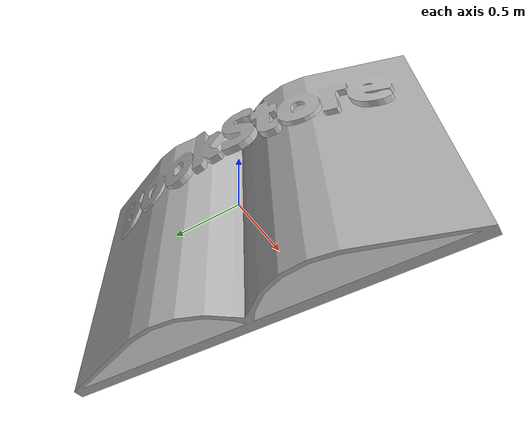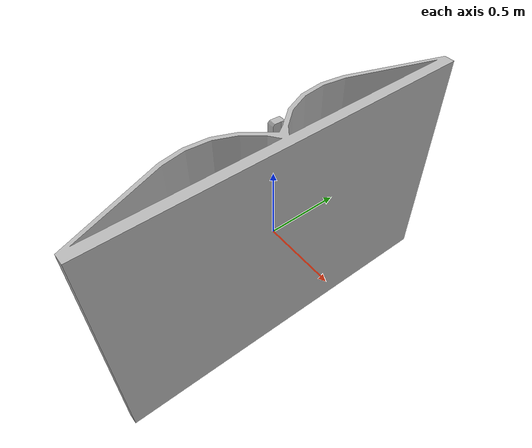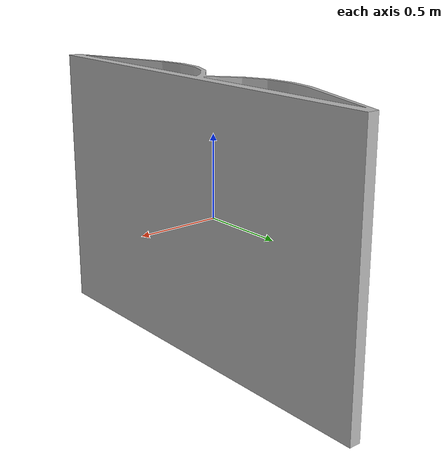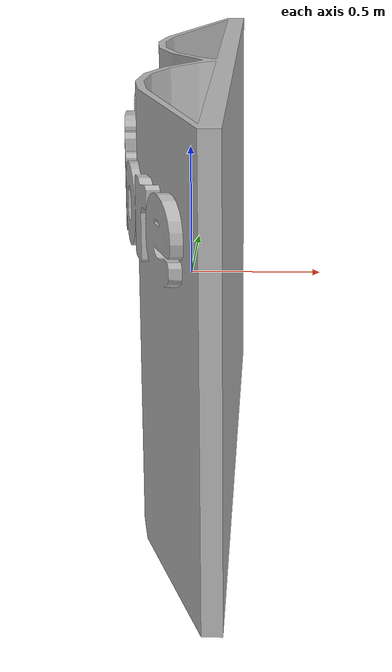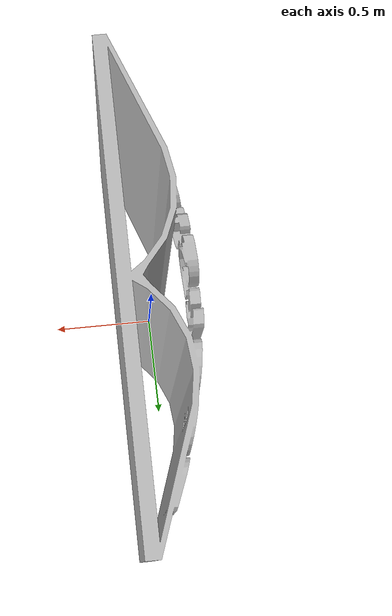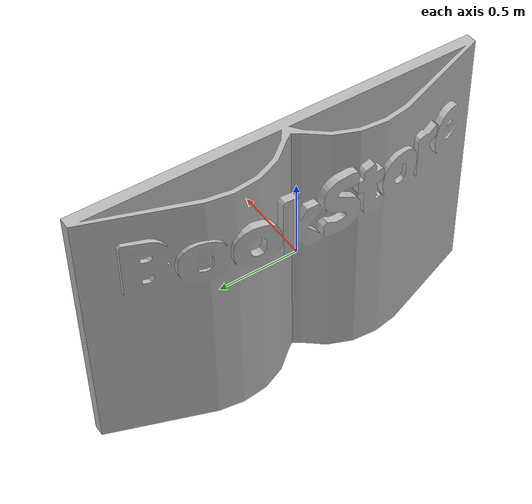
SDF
<?xml version="1.0" ?>
<sdf version="1.6">
  <model name="aws_robomaker_retail_BookstoreLogo_01">
    <link name="link">
      <inertial>
        <mass>1</mass>
      </inertial>
      <collision name="collision">
        <geometry>
          <mesh>
            <uri>model://aws_robomaker_retail_BookstoreLogo_01/meshes/aws_BookstoreLogo_01_collision.DAE</uri>
            <scale>1 1 1</scale>
          </mesh>
        </geometry>
      </collision>
      <visual name="visual">
	    <geometry>
          <mesh>
            <uri>model://aws_robomaker_retail_BookstoreLogo_01/meshes/aws_BookstoreLogo_01_visual.DAE</uri>
          </mesh>
        </geometry>
		<meta>
          <layer>2</layer>
        </meta>
      </visual>
    </link>
	<static>1</static>
  </model>
</sdf>
